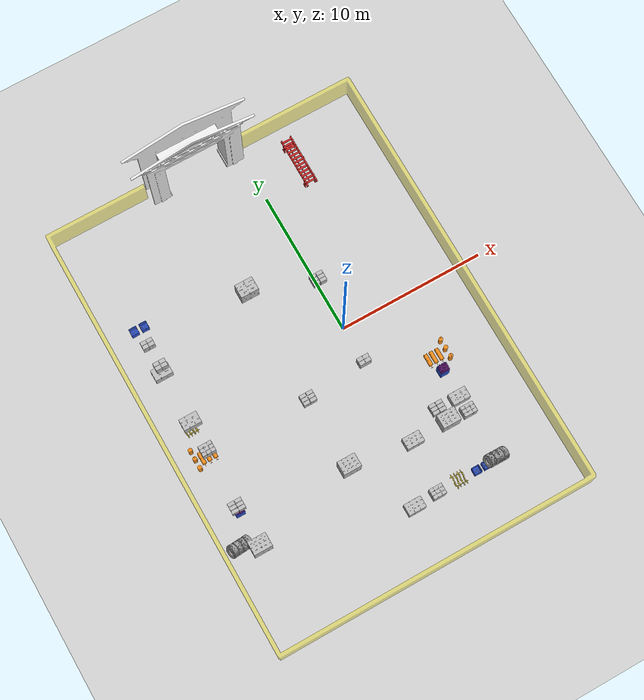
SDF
<sdf version="1.6">
 <world name="default">
  <light name="sun" type="directional">
   <pose>0 0 10 0 -0 0</pose>
   <diffuse>0.8 0.8 0.8 1</diffuse>
   <specular>0.2 0.2 0.2 1</specular>
   <attenuation>
    <range>1000</range>
    <constant>0.9</constant>
    <linear>0.01</linear>
    <quadratic>0.001</quadratic>
   </attenuation>
   <direction>-0.5 0.1 -0.9</direction>
  </light>
  <model name="ground_plane">
   <static>1</static>
   <link name="link">
    <collision name="collision">
     <geometry><plane><normal>0 0 1</normal><size>100 100</size></plane></geometry>
     <surface>
      <contact><collide_bitmask>65535</collide_bitmask></contact>
      <friction><ode><mu>100</mu><mu2>50</mu2></ode></friction>
     </surface>
    </collision>
    <visual name="visual">
     <cast_shadows>0</cast_shadows>
     <geometry><plane><normal>0 0 1</normal><size>100 100</size></plane></geometry>
     <material>
      <script><uri>file://media/materials/scripts/gazebo.material</uri><name>Gazebo/Grey</name></script>
     </material>
    </visual>
   </link>
  </model>
  <model name="tyre_stack">
   <pose>4.50119 -11.8639 0.092043 0 -1.16918 0.045058</pose>
   <static>0</static>
   <link name="link">
    <inertial>
     <mass>97.976</mass>
     <inertia><ixx>1</ixx><ixy>0</ixy><ixz>0</ixz><iyy>1</iyy><iyz>0</iyz><izz>1</izz></inertia>
    </inertial>
    <collision name="collision">
     <pose>0 0 0.1 0 -0 0</pose>
     <geometry><box><size>0.2 0.2 0.2</size></box></geometry>
    </collision>
    <visual name="visual">
     <geometry><mesh><uri>model://tyre_stack/meshes/tyre_stack.stl</uri></mesh></geometry>
     <material><script><name>Gazebo/Grey</name><uri>__default__</uri></script></material>
    </visual>
   </link>
  </model>
  <model name="pallet_13_up">
   <pose>1.5 -12 0.15 0 -0 0</pose>
   <static>1</static>
   <link name="link">
    <inertial>
     <mass>54.4311</mass>
     <inertia><ixx>1</ixx><ixy>0</ixy><ixz>0</ixz><iyy>1</iyy><iyz>0</iyz><izz>1</izz></inertia>
    </inertial>
    <collision name="collision">
     <geometry><mesh><uri>model://crankshafts/meshes/Crankshafts.stl</uri></mesh></geometry>
    </collision>
    <visual name="visual">
     <geometry><mesh><uri>model://crankshafts/meshes/Crankshafts.stl</uri></mesh></geometry>
     <material><script><name>Gazebo/ZincYellow</name><uri>__default__</uri></script></material>
    </visual>
   </link>
  </model>
  <model name="pallet_15_2_up">
   <pose>3.28 -12 0.18 0 -0 0</pose>
   <static>1</static>
   <link name="link">
    <inertial>
     <mass>54.4311</mass>
     <inertia><ixx>1</ixx><ixy>0</ixy><ixz>0</ixz><iyy>1</iyy><iyz>0</iyz><izz>1</izz></inertia>
    </inertial>
    <collision name="collision">
     <geometry><mesh><uri>model://bin_2/meshes/bin_2.stl</uri></mesh></geometry>
    </collision>
    <visual name="visual">
     <geometry><mesh><uri>model://bin_2/meshes/bin_2.stl</uri></mesh></geometry>
     <material><script><name>Gazebo/Blue</name><uri>__default__</uri></script></material>
    </visual>
   </link>
  </model>
  <model name="pallet_15_2_up_2">
   <pose>2.58 -12 0.18 0 -0 0</pose>
   <static>1</static>
   <link name="link">
    <inertial>
     <mass>54.4311</mass>
     <inertia><ixx>1</ixx><ixy>0</ixy><ixz>0</ixz><iyy>1</iyy><iyz>0</iyz><izz>1</izz></inertia>
    </inertial>
    <collision name="collision">
     <geometry><mesh><uri>model://bin_2/meshes/bin_2.stl</uri></mesh></geometry>
    </collision>
    <visual name="visual">
     <geometry><mesh><uri>model://bin_2/meshes/bin_2.stl</uri></mesh></geometry>
     <material><script><name>Gazebo/Blue</name><uri>__default__</uri></script></material>
    </visual>
   </link>
  </model>
  <model name="pallet_15_2_plumbing">
   <pose>2.16 -12.05 0.5 0 -0 0</pose>
   <static>1</static>
   <link name="link">
    <inertial>
     <mass>54.4311</mass>
     <inertia><ixx>1</ixx><ixy>0</ixy><ixz>0</ixz><iyy>1</iyy><iyz>0</iyz><izz>1</izz></inertia>
    </inertial>
    <collision name="collision">
     <geometry><mesh><uri>model://plumbing_parts/meshes/plumbing_parts.stl</uri></mesh></geometry>
    </collision>
    <visual name="visual">
     <geometry><mesh><uri>model://plumbing_parts/meshes/plumbing_parts.stl</uri></mesh></geometry>
     <material><script><name>Gazebo/White</name><uri>__default__</uri></script></material>
    </visual>
   </link>
  </model>
  <model name="pallet_15_2_plumbing_2">
   <pose>1.46 -12.05 0.5 0 -0 0</pose>
   <static>1</static>
   <link name="link">
    <inertial>
     <mass>54.4311</mass>
     <inertia><ixx>1</ixx><ixy>0</ixy><ixz>0</ixz><iyy>1</iyy><iyz>0</iyz><izz>1</izz></inertia>
    </inertial>
    <collision name="collision">
     <geometry><mesh><uri>model://plumbing_parts/meshes/plumbing_parts.stl</uri></mesh></geometry>
    </collision>
    <visual name="visual">
     <geometry><mesh><uri>model://plumbing_parts/meshes/plumbing_parts.stl</uri></mesh></geometry>
     <material><script><name>Gazebo/White</name><uri>__default__</uri></script></material>
    </visual>
   </link>
  </model>
  <model name="pallet_7_up">
   <pose>-0.3 -11.9 0.15 0 -0 1.57</pose>
   <static>1</static>
   <link name="link">
    <inertial>
     <mass>269.434</mass>
     <inertia><ixx>1</ixx><ixy>0</ixy><ixz>0</ixz><iyy>1</iyy><iyz>0</iyz><izz>1</izz></inertia>
    </inertial>
    <collision name="collision">
     <pose>0 0 0.32 0 -0 0</pose>
     <geometry><box><size>0.6 0.6 0.6</size></box></geometry>
    </collision>
    <visual name="visual">
     <geometry><mesh><uri>model://blue_box/meshes/blue_stack.dae</uri></mesh></geometry>
    </visual>
   </link>
  </model>
  <model name="pallet_8_up">
   <pose>-2.3 -12.1 0.15 0 -0 0</pose>
   <static>1</static>
   <link name="link">
    <inertial>
     <mass>244.94</mass>
     <inertia><ixx>1</ixx><ixy>0</ixy><ixz>0</ixz><iyy>1</iyy><iyz>0</iyz><izz>1</izz></inertia>
    </inertial>
    <collision name="collision">
     <geometry><mesh><uri>model://beer_1/meshes/beer_1_stack.dae</uri></mesh></geometry>
    </collision>
    <visual name="visual">
     <geometry><mesh><uri>model://beer_1/meshes/beer_1_stack.dae</uri></mesh></geometry>
    </visual>
   </link>
  </model>
  <model name="pallet_7__2_up">
   <pose>4 -8.4 0.15 0 -0 1.57</pose>
   <static>1</static>
   <link name="link">
    <inertial>
     <mass>269.434</mass>
     <inertia><ixx>1</ixx><ixy>0</ixy><ixz>0</ixz><iyy>1</iyy><iyz>0</iyz><izz>1</izz></inertia>
    </inertial>
    <collision name="collision">
     <pose>0 0 0.32 0 -0 0</pose>
     <geometry><box><size>0.6 0.6 0.6</size></box></geometry>
    </collision>
    <visual name="visual">
     <geometry><mesh><uri>model://blue_box/meshes/blue_stack.dae</uri></mesh></geometry>
    </visual>
   </link>
  </model>
  <model name="pallet_8_2_up">
   <pose>3.6 -7.5 0.15 0 -0 0</pose>
   <static>1</static>
   <link name="link">
    <inertial>
     <mass>244.94</mass>
     <inertia><ixx>1</ixx><ixy>0</ixy><ixz>0</ixz><iyy>1</iyy><iyz>0</iyz><izz>1</izz></inertia>
    </inertial>
    <collision name="collision">
     <geometry><mesh><uri>model://beer_1/meshes/beer_1_stack.dae</uri></mesh></geometry>
    </collision>
    <visual name="visual">
     <geometry><mesh><uri>model://beer_1/meshes/beer_1_stack.dae</uri></mesh></geometry>
    </visual>
   </link>
  </model>
  <model name="pallet_6_up">
   <pose>2.7 -7.7 0.15 0 -0 0</pose>
   <static>1</static>
   <link name="link">
    <inertial>
     <mass>97.976</mass>
     <inertia><ixx>1</ixx><ixy>0</ixy><ixz>0</ixz><iyy>1</iyy><iyz>0</iyz><izz>1</izz></inertia>
    </inertial>
    <collision name="collision">
     <geometry><mesh><uri>model://green_box/meshes/green_stack.dae</uri></mesh></geometry>
    </collision>
    <visual name="visual">
     <geometry><mesh><uri>model://green_box/meshes/green_stack.dae</uri></mesh></geometry>
    </visual>
   </link>
  </model>
  <model name="pallet_5_up">
   <pose>2.8 -8.8 0.15 0 -0 0</pose>
   <static>1</static>
   <link name="link">
    <inertial>
     <mass>783.808</mass>
     <inertia><ixx>1</ixx><ixy>0</ixy><ixz>0</ixz><iyy>1</iyy><iyz>0</iyz><izz>1</izz></inertia>
    </inertial>
    <collision name="collision">
     <geometry><mesh><uri>model://red_box/meshes/red_box_stack.dae</uri></mesh></geometry>
    </collision>
    <visual name="visual">
     <geometry><mesh><uri>model://red_box/meshes/red_box_stack.dae</uri></mesh></geometry>
    </visual>
   </link>
  </model>
  <model name="pallet_11_up">
   <pose>4 -5.5 0.15 0 -0 0</pose>
   <static>1</static>
   <link name="link">
    <inertial>
     <mass>97.976</mass>
     <inertia><ixx>1</ixx><ixy>0</ixy><ixz>0</ixz><iyy>1</iyy><iyz>0</iyz><izz>1</izz></inertia>
    </inertial>
    <collision name="collision">
     <geometry><mesh><uri>model://bin/meshes/bin.stl</uri></mesh></geometry>
    </collision>
    <visual name="visual">
     <geometry><mesh><uri>model://bin/meshes/bin.stl</uri></mesh></geometry>
     <material><script><name>Gazebo/Blue</name><uri>__default__</uri></script></material>
    </visual>
   </link>
  </model>
  <model name="pallet_11_up_2">
   <pose>4.3 -5.32 0.2 0 -0 0</pose>
   <static>1</static>
   <link name="link">
    <inertial>
     <mass>97.976</mass>
     <inertia><ixx>1</ixx><ixy>0</ixy><ixz>0</ixz><iyy>1</iyy><iyz>0</iyz><izz>1</izz></inertia>
    </inertial>
    <collision name="collision">
     <geometry><mesh><uri>model://pipes/meshes/pipes.stl</uri></mesh></geometry>
    </collision>
    <visual name="visual">
     <geometry><mesh><uri>model://pipes/meshes/pipes.stl</uri></mesh></geometry>
     <material><script><name>Gazebo/Purple</name><uri>__default__</uri></script></material>
    </visual>
   </link>
  </model>
  <model name="pallet_12_up">
   <pose>3.58 -4.1 0.33 1.57 1.57 0</pose>
   <static>1</static>
   <link name="link">
    <inertial>
     <mass>54.4311</mass>
     <inertia><ixx>1</ixx><ixy>0</ixy><ixz>0</ixz><iyy>1</iyy><iyz>0</iyz><izz>1</izz></inertia>
    </inertial>
    <collision name="collision">
     <geometry><mesh><uri>model://cylender_stack/meshes/cylender_stack.stl</uri></mesh></geometry>
    </collision>
    <visual name="visual">
     <geometry><mesh><uri>model://cylender_stack/meshes/cylender_stack.stl</uri></mesh></geometry>
     <material><script><name>Gazebo/Orange</name><uri>__default__</uri></script></material>
    </visual>
   </link>
  </model>
  <model name="pallet_12_up_2">
   <pose>4.9 -4.4 0 0 -0 1.57</pose>
   <static>1</static>
   <link name="link">
    <inertial>
     <mass>54.4311</mass>
     <inertia><ixx>1</ixx><ixy>0</ixy><ixz>0</ixz><iyy>1</iyy><iyz>0</iyz><izz>1</izz></inertia>
    </inertial>
    <collision name="collision">
     <geometry><mesh><uri>model://cylender_foot/meshes/foot_apart.stl</uri></mesh></geometry>
    </collision>
    <visual name="visual">
     <geometry><mesh><uri>model://cylender_foot/meshes/foot_apart.stl</uri></mesh></geometry>
     <material><script><name>Gazebo/Orange</name><uri>__default__</uri></script></material>
    </visual>
   </link>
  </model>
  <model name="conveyor">
   <pose>3 11 -0.001033 9e-06 -5e-06 1.57</pose>
   <static>0</static>
   <link name="link">
    <inertial>
     <mass>25</mass>
     <inertia><ixx>1</ixx><ixy>0</ixy><ixz>0</ixz><iyy>1</iyy><iyz>0</iyz><izz>1</izz></inertia>
    </inertial>
    <collision name="collision">
     <geometry><mesh><uri>model://conveyor_belt/meshes/conveyor.stl</uri></mesh></geometry>
    </collision>
    <visual name="visual">
     <geometry><mesh><uri>model://conveyor_belt/meshes/conveyor.stl</uri></mesh></geometry>
     <material><script><name>Gazebo/RedBright</name><uri>__default__</uri></script></material>
    </visual>
   </link>
  </model>
  <model name="boundary">
   <pose>-0.5 14 0 0 0 -1.57</pose>
   <static>1</static>
   <link name="link">
    <inertial>
     <mass>54.4311</mass>
     <inertia><ixx>1</ixx><ixy>0</ixy><ixz>0</ixz><iyy>1</iyy><iyz>0</iyz><izz>1</izz></inertia>
    </inertial>
    <collision name="collision">
     <geometry><mesh><uri>model://boundary/meshes/wall.stl</uri></mesh></geometry>
    </collision>
    <visual name="visual">
     <geometry><mesh><uri>model://boundary/meshes/wall.stl</uri></mesh></geometry>
     <material><script><name>Gazebo/YellowTransparent</name><uri>__default__</uri></script></material>
    </visual>
   </link>
  </model>
  <model name="door">
   <pose>-3 14 0 0 -0 1.57</pose>
   <static>1</static>
   <link name="link">
    <inertial>
     <mass>97.976</mass>
     <inertia><ixx>1</ixx><ixy>0</ixy><ixz>0</ixz><iyy>1</iyy><iyz>0</iyz><izz>1</izz></inertia>
    </inertial>
    <collision name="collision">
     <geometry><mesh><uri>model://door/meshes/door.stl</uri></mesh></geometry>
    </collision>
    <visual name="visual">
     <geometry><mesh><uri>model://door/meshes/door.stl</uri></mesh></geometry>
     <material><script><name>Gazebo/White</name><uri>__default__</uri></script></material>
    </visual>
   </link>
  </model>
  <model name="pallet_8_3_up">
   <pose>-0.3 -8.5 0.15 0 -0 0</pose>
   <static>1</static>
   <link name="link">
    <inertial>
     <mass>244.94</mass>
     <inertia><ixx>1</ixx><ixy>0</ixy><ixz>0</ixz><iyy>1</iyy><iyz>0</iyz><izz>1</izz></inertia>
    </inertial>
    <collision name="collision">
     <geometry><mesh><uri>model://beer_1/meshes/beer_1_stack.dae</uri></mesh></geometry>
    </collision>
    <visual name="visual">
     <geometry><mesh><uri>model://beer_1/meshes/beer_1_stack.dae</uri></mesh></geometry>
    </visual>
   </link>
  </model>
  <model name="pallet_9_up">
   <pose>-0.2 -2.7 0.15 0 -0 0</pose>
   <static>1</static>
   <link name="link">
    <inertial>
     <mass>97.976</mass>
     <inertia><ixx>1</ixx><ixy>0</ixy><ixz>0</ixz><iyy>1</iyy><iyz>0</iyz><izz>1</izz></inertia>
    </inertial>
    <collision name="collision">
     <geometry><mesh><uri>model://beer_2/meshes/beer_2_stack.dae</uri></mesh></geometry>
    </collision>
    <visual name="visual">
     <geometry><mesh><uri>model://beer_2/meshes/beer_2_stack.dae</uri></mesh></geometry>
    </visual>
   </link>
  </model>
  <model name="pallet_6_2_up">
   <pose>0.4 3.3 0.15 0 -0 0</pose>
   <static>1</static>
   <link name="link">
    <inertial>
     <mass>97.976</mass>
     <inertia><ixx>1</ixx><ixy>0</ixy><ixz>0</ixz><iyy>1</iyy><iyz>0</iyz><izz>1</izz></inertia>
    </inertial>
    <collision name="collision">
     <geometry><mesh><uri>model://green_box/meshes/green_stack.dae</uri></mesh></geometry>
    </collision>
    <visual name="visual">
     <geometry><mesh><uri>model://green_box/meshes/green_stack.dae</uri></mesh></geometry>
    </visual>
   </link>
  </model>
  <model name="pallet_5_2_up">
   <pose>-4 4.7 0.15 0 -0 0</pose>
   <static>1</static>
   <link name="link">
    <inertial>
     <mass>783.808</mass>
     <inertia><ixx>1</ixx><ixy>0</ixy><ixz>0</ixz><iyy>1</iyy><iyz>0</iyz><izz>1</izz></inertia>
    </inertial>
    <collision name="collision">
     <geometry><mesh><uri>model://red_box/meshes/red_box_stack.dae</uri></mesh></geometry>
    </collision>
    <visual name="visual">
     <geometry><mesh><uri>model://red_box/meshes/red_box_stack.dae</uri></mesh></geometry>
    </visual>
   </link>
  </model>
  <model name="pallet_6_3_up">
   <pose>-4 -3.2 0.15 0 -0 0</pose>
   <static>1</static>
   <link name="link">
    <inertial>
     <mass>97.976</mass>
     <inertia><ixx>1</ixx><ixy>0</ixy><ixz>0</ixz><iyy>1</iyy><iyz>0</iyz><izz>1</izz></inertia>
    </inertial>
    <collision name="collision">
     <geometry><mesh><uri>model://green_box/meshes/green_stack.dae</uri></mesh></geometry>
    </collision>
    <visual name="visual">
     <geometry><mesh><uri>model://green_box/meshes/green_stack.dae</uri></mesh></geometry>
    </visual>
   </link>
  </model>
  <model name="pallet_5_3_up">
   <pose>-4 -8.3 0.15 0 -0 0</pose>
   <static>1</static>
   <link name="link">
    <inertial>
     <mass>783.808</mass>
     <inertia><ixx>1</ixx><ixy>0</ixy><ixz>0</ixz><iyy>1</iyy><iyz>0</iyz><izz>1</izz></inertia>
    </inertial>
    <collision name="collision">
     <geometry><mesh><uri>model://red_box/meshes/red_box_stack.dae</uri></mesh></geometry>
    </collision>
    <visual name="visual">
     <geometry><mesh><uri>model://red_box/meshes/red_box_stack.dae</uri></mesh></geometry>
    </visual>
   </link>
  </model>
  <model name="pallet_5_4_up">
   <pose>-11.2 -10.1 1.65 0 -0 0</pose>
   <static>1</static>
   <link name="link">
    <inertial>
     <mass>783.808</mass>
     <inertia><ixx>1</ixx><ixy>0</ixy><ixz>0</ixz><iyy>1</iyy><iyz>0</iyz><izz>1</izz></inertia>
    </inertial>
    <collision name="collision">
     <geometry><mesh><uri>model://red_box/meshes/red_box_stack.dae</uri></mesh></geometry>
    </collision>
    <visual name="visual">
     <geometry><mesh><uri>model://red_box/meshes/red_box_stack.dae</uri></mesh></geometry>
    </visual>
   </link>
  </model>
  <model name="pallet_6_4_up">
   <pose>-11.2 -7.2 1.65 0 -0 0</pose>
   <static>1</static>
   <link name="link">
    <inertial>
     <mass>97.976</mass>
     <inertia><ixx>1</ixx><ixy>0</ixy><ixz>0</ixz><iyy>1</iyy><iyz>0</iyz><izz>1</izz></inertia>
    </inertial>
    <collision name="collision">
     <geometry><mesh><uri>model://green_box/meshes/green_stack.dae</uri></mesh></geometry>
    </collision>
    <visual name="visual">
     <geometry><mesh><uri>model://green_box/meshes/green_stack.dae</uri></mesh></geometry>
    </visual>
   </link>
  </model>
  <model name="pallet_10_2_up">
   <pose>-11.9182 -8.88405 0.092172 1e-06 -1.17251 0.129153</pose>
   <static>0</static>
   <link name="link">
    <inertial>
     <mass>97.976</mass>
     <inertia><ixx>1</ixx><ixy>0</ixy><ixz>0</ixz><iyy>1</iyy><iyz>0</iyz><izz>1</izz></inertia>
    </inertial>
    <collision name="collision">
     <pose>0 0 0.1 0 -0 0</pose>
     <geometry><box><size>0.2 0.2 0.2</size></box></geometry>
    </collision>
    <visual name="visual">
     <geometry><mesh><uri>model://tyre_stack/meshes/tyre_stack.stl</uri></mesh></geometry>
     <material><script><name>Gazebo/Grey</name><uri>__default__</uri></script></material>
    </visual>
   </link>
  </model>
  <model name="pallet_11_2_up">
   <pose>-11.4 -7 0.15 0 -0 0</pose>
   <static>1</static>
   <link name="link">
    <inertial>
     <mass>97.976</mass>
     <inertia><ixx>1</ixx><ixy>0</ixy><ixz>0</ixz><iyy>1</iyy><iyz>0</iyz><izz>1</izz></inertia>
    </inertial>
    <collision name="collision">
     <geometry><mesh><uri>model://bin/meshes/bin.stl</uri></mesh></geometry>
    </collision>
    <visual name="visual">
     <geometry><mesh><uri>model://bin/meshes/bin.stl</uri></mesh></geometry>
     <material><script><name>Gazebo/Blue</name><uri>__default__</uri></script></material>
    </visual>
   </link>
  </model>
  <model name="pallet_11_2_up_2">
   <pose>-11.1 -6.8 0.2 0 -0 0</pose>
   <static>1</static>
   <link name="link">
    <inertial>
     <mass>97.976</mass>
     <inertia><ixx>1</ixx><ixy>0</ixy><ixz>0</ixz><iyy>1</iyy><iyz>0</iyz><izz>1</izz></inertia>
    </inertial>
    <collision name="collision">
     <geometry><mesh><uri>model://pipes/meshes/pipes.stl</uri></mesh></geometry>
    </collision>
    <visual name="visual">
     <geometry><mesh><uri>model://pipes/meshes/pipes.stl</uri></mesh></geometry>
     <material><script><name>Gazebo/Purple</name><uri>__default__</uri></script></material>
    </visual>
   </link>
  </model>
  <model name="pallet_7__3_up">
   <pose>-11.38 -2.9 1.65 0 -0 1.57</pose>
   <static>1</static>
   <link name="link">
    <inertial>
     <mass>269.434</mass>
     <inertia><ixx>1</ixx><ixy>0</ixy><ixz>0</ixz><iyy>1</iyy><iyz>0</iyz><izz>1</izz></inertia>
    </inertial>
    <collision name="collision">
     <pose>0 0 0.32 0 -0 0</pose>
     <geometry><box><size>0.6 0.6 0.6</size></box></geometry>
    </collision>
    <visual name="visual">
     <geometry><mesh><uri>model://blue_box/meshes/blue_stack.dae</uri></mesh></geometry>
    </visual>
   </link>
  </model>
  <model name="pallet_8_4_up">
   <pose>-11.78 -1 1.65 0 -0 0</pose>
   <static>1</static>
   <link name="link">
    <inertial>
     <mass>244.94</mass>
     <inertia><ixx>1</ixx><ixy>0</ixy><ixz>0</ixz><iyy>1</iyy><iyz>0</iyz><izz>1</izz></inertia>
    </inertial>
    <collision name="collision">
     <geometry><mesh><uri>model://beer_1/meshes/beer_1_stack.dae</uri></mesh></geometry>
    </collision>
    <visual name="visual">
     <geometry><mesh><uri>model://beer_1/meshes/beer_1_stack.dae</uri></mesh></geometry>
    </visual>
   </link>
  </model>
  <model name="pallet_12_2_up">
   <pose>-11.8 -2.6 0.33 1.57 1.57 0</pose>
   <static>1</static>
   <link name="link">
    <inertial>
     <mass>54.4311</mass>
     <inertia><ixx>1</ixx><ixy>0</ixy><ixz>0</ixz><iyy>1</iyy><iyz>0</iyz><izz>1</izz></inertia>
    </inertial>
    <collision name="collision">
     <geometry><mesh><uri>model://cylender_stack/meshes/cylender_stack.stl</uri></mesh></geometry>
    </collision>
    <visual name="visual">
     <geometry><mesh><uri>model://cylender_stack/meshes/cylender_stack.stl</uri></mesh></geometry>
     <material><script><name>Gazebo/Orange</name><uri>__default__</uri></script></material>
    </visual>
   </link>
  </model>
  <model name="pallet_12_2_up_2">
   <pose>-12.2 -2.9 0 0 -0 1.57</pose>
   <static>1</static>
   <link name="link">
    <inertial>
     <mass>54.4311</mass>
     <inertia><ixx>1</ixx><ixy>0</ixy><ixz>0</ixz><iyy>1</iyy><iyz>0</iyz><izz>1</izz></inertia>
    </inertial>
    <collision name="collision">
     <geometry><mesh><uri>model://cylender_foot/meshes/foot_apart.stl</uri></mesh></geometry>
    </collision>
    <visual name="visual">
     <geometry><mesh><uri>model://cylender_foot/meshes/foot_apart.stl</uri></mesh></geometry>
     <material><script><name>Gazebo/Orange</name><uri>__default__</uri></script></material>
    </visual>
   </link>
  </model>
  <model name="pallet_13_3_up">
   <pose>-11.4 -1 0.15 0 -0 0</pose>
   <static>1</static>
   <link name="link">
    <inertial>
     <mass>54.4311</mass>
     <inertia><ixx>1</ixx><ixy>0</ixy><ixz>0</ixz><iyy>1</iyy><iyz>0</iyz><izz>1</izz></inertia>
    </inertial>
    <collision name="collision">
     <geometry><mesh><uri>model://crankshafts/meshes/Crankshafts.stl</uri></mesh></geometry>
    </collision>
    <visual name="visual">
     <geometry><mesh><uri>model://crankshafts/meshes/Crankshafts.stl</uri></mesh></geometry>
     <material><script><name>Gazebo/ZincYellow</name><uri>__default__</uri></script></material>
    </visual>
   </link>
  </model>
  <model name="pallet_8_5_up">
   <pose>-11.78 3 0.15 0 -0 0</pose>
   <static>1</static>
   <link name="link">
    <inertial>
     <mass>244.94</mass>
     <inertia><ixx>1</ixx><ixy>0</ixy><ixz>0</ixz><iyy>1</iyy><iyz>0</iyz><izz>1</izz></inertia>
    </inertial>
    <collision name="collision">
     <geometry><mesh><uri>model://beer_1/meshes/beer_1_stack.dae</uri></mesh></geometry>
    </collision>
    <visual name="visual">
     <geometry><mesh><uri>model://beer_1/meshes/beer_1_stack.dae</uri></mesh></geometry>
    </visual>
   </link>
  </model>
  <model name="pallet_9_2_up">
   <pose>-11.5 4.9 0.15 0 -0 0</pose>
   <static>1</static>
   <link name="link">
    <inertial>
     <mass>97.976</mass>
     <inertia><ixx>1</ixx><ixy>0</ixy><ixz>0</ixz><iyy>1</iyy><iyz>0</iyz><izz>1</izz></inertia>
    </inertial>
    <collision name="collision">
     <geometry><mesh><uri>model://beer_2/meshes/beer_2_stack.dae</uri></mesh></geometry>
    </collision>
    <visual name="visual">
     <geometry><mesh><uri>model://beer_2/meshes/beer_2_stack.dae</uri></mesh></geometry>
    </visual>
   </link>
  </model>
  <model name="pallet_9_3_up">
   <pose>-11.5 2.9 1.65 0 -0 0</pose>
   <static>1</static>
   <link name="link">
    <inertial>
     <mass>97.976</mass>
     <inertia><ixx>1</ixx><ixy>0</ixy><ixz>0</ixz><iyy>1</iyy><iyz>0</iyz><izz>1</izz></inertia>
    </inertial>
    <collision name="collision">
     <geometry><mesh><uri>model://beer_2/meshes/beer_2_stack.dae</uri></mesh></geometry>
    </collision>
    <visual name="visual">
     <geometry><mesh><uri>model://beer_2/meshes/beer_2_stack.dae</uri></mesh></geometry>
    </visual>
   </link>
  </model>
  <model name="pallet_13_3_up">
   <pose>-11.4 -1 0.15 0 -0 0</pose>
   <static>1</static>
   <link name="link">
    <inertial>
     <mass>54.4311</mass>
     <inertia><ixx>1</ixx><ixy>0</ixy><ixz>0</ixz><iyy>1</iyy><iyz>0</iyz><izz>1</izz></inertia>
    </inertial>
    <collision name="collision">
     <geometry><mesh><uri>model://crankshafts/meshes/Crankshafts.stl</uri></mesh></geometry>
    </collision>
    <visual name="visual">
     <geometry><mesh><uri>model://crankshafts/meshes/Crankshafts.stl</uri></mesh></geometry>
     <material><script><name>Gazebo/ZincYellow</name><uri>__default__</uri></script></material>
    </visual>
   </link>
  </model>
  <model name="pallet_15_up">
   <pose>-11 5.8 1.68 0 -0 0</pose>
   <static>1</static>
   <link name="link">
    <inertial>
     <mass>54.4311</mass>
     <inertia><ixx>1</ixx><ixy>0</ixy><ixz>0</ixz><iyy>1</iyy><iyz>0</iyz><izz>1</izz></inertia>
    </inertial>
    <collision name="collision">
     <geometry><mesh><uri>model://bin_2/meshes/bin_2.stl</uri></mesh></geometry>
    </collision>
    <visual name="visual">
     <geometry><mesh><uri>model://bin_2/meshes/bin_2.stl</uri></mesh></geometry>
     <material><script><name>Gazebo/Blue</name><uri>__default__</uri></script></material>
    </visual>
   </link>
  </model>
  <model name="pallet_15_up_2">
   <pose>-11.7 5.8 1.68 0 -0 0</pose>
   <static>1</static>
   <link name="link">
    <inertial>
     <mass>54.4311</mass>
     <inertia><ixx>1</ixx><ixy>0</ixy><ixz>0</ixz><iyy>1</iyy><iyz>0</iyz><izz>1</izz></inertia>
    </inertial>
    <collision name="collision">
     <geometry><mesh><uri>model://bin_2/meshes/bin_2.stl</uri></mesh></geometry>
    </collision>
    <visual name="visual">
     <geometry><mesh><uri>model://bin_2/meshes/bin_2.stl</uri></mesh></geometry>
     <material><script><name>Gazebo/Blue</name><uri>__default__</uri></script></material>
    </visual>
   </link>
  </model>
  <model name="pallet_15_plumbing">
   <pose>-12.12 5.75 2 0 -0 0</pose>
   <static>1</static>
   <link name="link">
    <inertial>
     <mass>54.4311</mass>
     <inertia><ixx>1</ixx><ixy>0</ixy><ixz>0</ixz><iyy>1</iyy><iyz>0</iyz><izz>1</izz></inertia>
    </inertial>
    <collision name="collision">
     <geometry><mesh><uri>model://plumbing_parts/meshes/plumbing_parts.stl</uri></mesh></geometry>
    </collision>
    <visual name="visual">
     <geometry><mesh><uri>model://plumbing_parts/meshes/plumbing_parts.stl</uri></mesh></geometry>
     <material><script><name>Gazebo/White</name><uri>__default__</uri></script></material>
    </visual>
   </link>
  </model>
  <model name="pallet_15_plumbing_2">
   <pose>-12.82 5.75 2 0 -0 0</pose>
   <static>1</static>
   <link name="link">
    <inertial>
     <mass>54.4311</mass>
     <inertia><ixx>1</ixx><ixy>0</ixy><ixz>0</ixz><iyy>1</iyy><iyz>0</iyz><izz>1</izz></inertia>
    </inertial>
    <collision name="collision">
     <geometry><mesh><uri>model://plumbing_parts/meshes/plumbing_parts.stl</uri></mesh></geometry>
    </collision>
    <visual name="visual">
     <geometry><mesh><uri>model://plumbing_parts/meshes/plumbing_parts.stl</uri></mesh></geometry>
     <material><script><name>Gazebo/White</name><uri>__default__</uri></script></material>
    </visual>
   </link>
  </model>
  <gravity>0 0 -9.8</gravity>
  <magnetic_field>6e-06 2.3e-05 -4.2e-05</magnetic_field>
  <atmosphere type="adiabatic"/>
  <physics name="default_physics" default="0" type="ode">
   <max_step_size>0.001</max_step_size>
   <real_time_factor>1</real_time_factor>
   <real_time_update_rate>1000</real_time_update_rate>
  </physics>
  <scene><ambient>0.4 0.4 0.4 1</ambient><background>0.7 0.7 0.7 1</background><shadows>1</shadows></scene>
  <spherical_coordinates>
   <surface_model>EARTH_WGS84</surface_model>
   <latitude_deg>0</latitude_deg>
   <longitude_deg>0</longitude_deg>
   <elevation>0</elevation>
   <heading_deg>0</heading_deg>
  </spherical_coordinates>
 </world>
</sdf>
